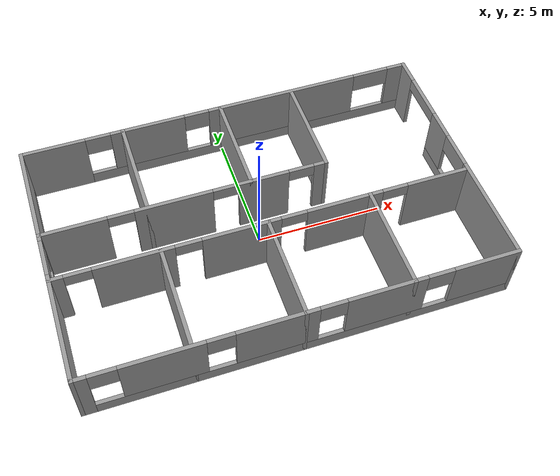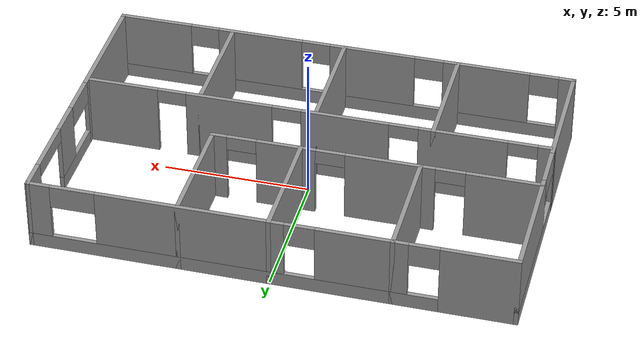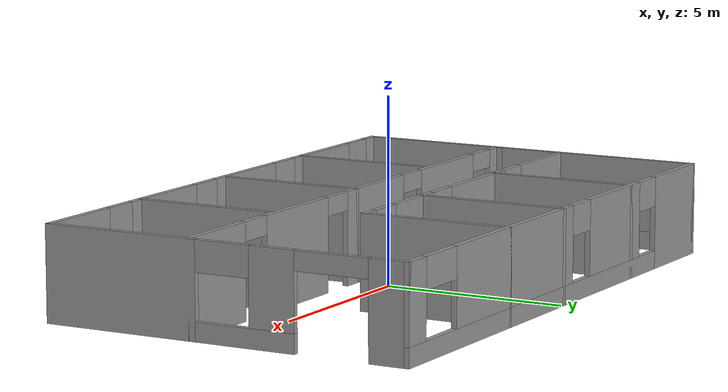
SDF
<?xml version='1.0'?>
<sdf version='1.6'>
  <model name='Hosp_Map'>
    <pose>0 0 0 0 -0 0</pose>
    <link name='Wall_0'>
      <pose>0 -5 0 0 -0 0</pose>
      <visual name='Wall_0_Visual_0'>
        <pose>-7.7875 0 1.25 0 -0 0</pose>
        <geometry>
          <box>
            <size>0.575 0.15 2.5</size>
          </box>
        </geometry>
        <material>
          <script>
            <uri>file://media/materials/scripts/gazebo.material</uri>
            <name>Gazebo/Grey</name>
          </script>
          <ambient>1 1 1 1</ambient>
        </material>
        <meta>
          <layer>0</layer>
        </meta>
      </visual>
      <collision name='Wall_0_Collision_0'>
        <geometry>
          <box>
            <size>0.575 0.15 2.5</size>
          </box>
        </geometry>
        <pose>-7.7875 0 1.25 0 -0 0</pose>
      </collision>
      <visual name='Wall_0_Visual_1'>
        <pose>0.2875 0 0.25 0 -0 0</pose>
        <geometry>
          <box>
            <size>15.575 0.15 0.5</size>
          </box>
        </geometry>
        <material>
          <script>
            <uri>file://media/materials/scripts/gazebo.material</uri>
            <name>Gazebo/Grey</name>
          </script>
          <ambient>1 1 1 1</ambient>
        </material>
        <meta>
          <layer>0</layer>
        </meta>
      </visual>
      <collision name='Wall_0_Collision_1'>
        <geometry>
          <box>
            <size>15.575 0.15 0.5</size>
          </box>
        </geometry>
        <pose>0.2875 0 0.25 0 -0 0</pose>
      </collision>
      <visual name='Wall_0_Visual_2'>
        <pose>-5 0 1.5 0 -0 0</pose>
        <geometry>
          <box>
            <size>3 0.15 2</size>
          </box>
        </geometry>
        <material>
          <script>
            <uri>file://media/materials/scripts/gazebo.material</uri>
            <name>Gazebo/Grey</name>
          </script>
          <ambient>1 1 1 1</ambient>
        </material>
        <meta>
          <layer>0</layer>
        </meta>
      </visual>
      <collision name='Wall_0_Collision_2'>
        <geometry>
          <box>
            <size>3 0.15 2</size>
          </box>
        </geometry>
        <pose>-5 0 1.5 0 -0 0</pose>
      </collision>
      <visual name='Wall_0_Visual_3'>
        <pose>-1 0 1.5 0 -0 0</pose>
        <geometry>
          <box>
            <size>3 0.15 2</size>
          </box>
        </geometry>
        <material>
          <script>
            <uri>file://media/materials/scripts/gazebo.material</uri>
            <name>Gazebo/Grey</name>
          </script>
          <ambient>1 1 1 1</ambient>
        </material>
        <meta>
          <layer>0</layer>
        </meta>
      </visual>
      <collision name='Wall_0_Collision_3'>
        <geometry>
          <box>
            <size>3 0.15 2</size>
          </box>
        </geometry>
        <pose>-1 0 1.5 0 -0 0</pose>
      </collision>
      <visual name='Wall_0_Visual_4'>
        <pose>3 0 1.5 0 -0 0</pose>
        <geometry>
          <box>
            <size>3 0.15 2</size>
          </box>
        </geometry>
        <material>
          <script>
            <uri>file://media/materials/scripts/gazebo.material</uri>
            <name>Gazebo/Grey</name>
          </script>
          <ambient>1 1 1 1</ambient>
        </material>
        <meta>
          <layer>0</layer>
        </meta>
      </visual>
      <collision name='Wall_0_Collision_4'>
        <geometry>
          <box>
            <size>3 0.15 2</size>
          </box>
        </geometry>
        <pose>3 0 1.5 0 -0 0</pose>
      </collision>
      <visual name='Wall_0_Visual_5'>
        <pose>6.7875 0 1.5 0 -0 0</pose>
        <geometry>
          <box>
            <size>2.575 0.15 2</size>
          </box>
        </geometry>
        <material>
          <script>
            <uri>file://media/materials/scripts/gazebo.material</uri>
            <name>Gazebo/Grey</name>
          </script>
          <ambient>1 1 1 1</ambient>
        </material>
        <meta>
          <layer>0</layer>
        </meta>
      </visual>
      <collision name='Wall_0_Collision_5'>
        <geometry>
          <box>
            <size>2.575 0.15 2</size>
          </box>
        </geometry>
        <pose>6.7875 0 1.5 0 -0 0</pose>
      </collision>
      <visual name='Wall_0_Visual_6'>
        <pose>-7 0 2.1 0 -0 0</pose>
        <geometry>
          <box>
            <size>1 0.15 0.8</size>
          </box>
        </geometry>
        <material>
          <script>
            <uri>file://media/materials/scripts/gazebo.material</uri>
            <name>Gazebo/Grey</name>
          </script>
          <ambient>1 1 1 1</ambient>
        </material>
        <meta>
          <layer>0</layer>
        </meta>
      </visual>
      <collision name='Wall_0_Collision_6'>
        <geometry>
          <box>
            <size>1 0.15 0.8</size>
          </box>
        </geometry>
        <pose>-7 0 2.1 0 -0 0</pose>
      </collision>
      <visual name='Wall_0_Visual_7'>
        <pose>-3 0 2.1 0 -0 0</pose>
        <geometry>
          <box>
            <size>1 0.15 0.8</size>
          </box>
        </geometry>
        <material>
          <script>
            <uri>file://media/materials/scripts/gazebo.material</uri>
            <name>Gazebo/Grey</name>
          </script>
          <ambient>1 1 1 1</ambient>
        </material>
        <meta>
          <layer>0</layer>
        </meta>
      </visual>
      <collision name='Wall_0_Collision_7'>
        <geometry>
          <box>
            <size>1 0.15 0.8</size>
          </box>
        </geometry>
        <pose>-3 0 2.1 0 -0 0</pose>
      </collision>
      <visual name='Wall_0_Visual_8'>
        <pose>1 0 2.1 0 -0 0</pose>
        <geometry>
          <box>
            <size>1 0.15 0.8</size>
          </box>
        </geometry>
        <material>
          <script>
            <uri>file://media/materials/scripts/gazebo.material</uri>
            <name>Gazebo/Grey</name>
          </script>
          <ambient>1 1 1 1</ambient>
        </material>
        <meta>
          <layer>0</layer>
        </meta>
      </visual>
      <collision name='Wall_0_Collision_8'>
        <geometry>
          <box>
            <size>1 0.15 0.8</size>
          </box>
        </geometry>
        <pose>1 0 2.1 0 -0 0</pose>
      </collision>
      <visual name='Wall_0_Visual_9'>
        <pose>5 0 2.1 0 -0 0</pose>
        <geometry>
          <box>
            <size>1 0.15 0.8</size>
          </box>
        </geometry>
        <material>
          <script>
            <uri>file://media/materials/scripts/gazebo.material</uri>
            <name>Gazebo/Grey</name>
          </script>
          <ambient>1 1 1 1</ambient>
        </material>
        <meta>
          <layer>0</layer>
        </meta>
      </visual>
      <collision name='Wall_0_Collision_9'>
        <geometry>
          <box>
            <size>1 0.15 0.8</size>
          </box>
        </geometry>
        <pose>5 0 2.1 0 -0 0</pose>
      </collision>
    </link>
    <link name='Wall_10'>
      <collision name='Wall_10_Collision'>
        <geometry>
          <box>
            <size>4.15 0.15 2.5</size>
          </box>
        </geometry>
        <pose>0 0 1.25 0 -0 0</pose>
      </collision>
      <visual name='Wall_10_Visual'>
        <pose>0 0 1.25 0 -0 0</pose>
        <geometry>
          <box>
            <size>4.15 0.15 2.5</size>
          </box>
        </geometry>
        <material>
          <script>
            <uri>file://media/materials/scripts/gazebo.material</uri>
            <name>Gazebo/Grey</name>
          </script>
          <ambient>1 1 1 1</ambient>
        </material>
        <meta>
          <layer>0</layer>
        </meta>
      </visual>
      <pose>-4 -3 0 0 -0 -1.5708</pose>
    </link>
    <link name='Wall_12'>
      <collision name='Wall_12_Collision'>
        <geometry>
          <box>
            <size>4.15 0.15 2.5</size>
          </box>
        </geometry>
        <pose>0 0 1.25 0 -0 0</pose>
      </collision>
      <visual name='Wall_12_Visual'>
        <pose>0 0 1.25 0 -0 0</pose>
        <geometry>
          <box>
            <size>4.15 0.15 2.5</size>
          </box>
        </geometry>
        <material>
          <script>
            <uri>file://media/materials/scripts/gazebo.material</uri>
            <name>Gazebo/Grey</name>
          </script>
          <ambient>1 1 1 1</ambient>
        </material>
        <meta>
          <layer>0</layer>
        </meta>
      </visual>
      <pose>0 -3 0 0 -0 -1.5708</pose>
    </link>
    <link name='Wall_14'>
      <collision name='Wall_14_Collision'>
        <geometry>
          <box>
            <size>4.15 0.15 2.5</size>
          </box>
        </geometry>
        <pose>0 0 1.25 0 -0 0</pose>
      </collision>
      <visual name='Wall_14_Visual'>
        <pose>0 0 1.25 0 -0 0</pose>
        <geometry>
          <box>
            <size>4.15 0.15 2.5</size>
          </box>
        </geometry>
        <material>
          <script>
            <uri>file://media/materials/scripts/gazebo.material</uri>
            <name>Gazebo/Grey</name>
          </script>
          <ambient>1 1 1 1</ambient>
        </material>
        <meta>
          <layer>0</layer>
        </meta>
      </visual>
      <pose>4 -3 0 0 -0 -1.5708</pose>
    </link>
    <link name='Wall_16'>
      <pose>-2.5 1 0 0 -0 0</pose>
      <visual name='Wall_16_Visual_0'>
        <pose>-4.2875 0 1.25 0 -0 0</pose>
        <geometry>
          <box>
            <size>2.575 0.15 2.5</size>
          </box>
        </geometry>
        <material>
          <script>
            <uri>file://media/materials/scripts/gazebo.material</uri>
            <name>Gazebo/Grey</name>
          </script>
          <ambient>1 1 1 1</ambient>
        </material>
        <meta>
          <layer>0</layer>
        </meta>
      </visual>
      <collision name='Wall_16_Collision_0'>
        <geometry>
          <box>
            <size>2.575 0.15 2.5</size>
          </box>
        </geometry>
        <pose>-4.2875 0 1.25 0 -0 0</pose>
      </collision>
      <visual name='Wall_16_Visual_1'>
        <pose>-0.5 0 1.25 0 -0 0</pose>
        <geometry>
          <box>
            <size>3 0.15 2.5</size>
          </box>
        </geometry>
        <material>
          <script>
            <uri>file://media/materials/scripts/gazebo.material</uri>
            <name>Gazebo/Grey</name>
          </script>
          <ambient>1 1 1 1</ambient>
        </material>
        <meta>
          <layer>0</layer>
        </meta>
      </visual>
      <collision name='Wall_16_Collision_1'>
        <geometry>
          <box>
            <size>3 0.15 2.5</size>
          </box>
        </geometry>
        <pose>-0.5 0 1.25 0 -0 0</pose>
      </collision>
      <visual name='Wall_16_Visual_2'>
        <pose>3 0 1.25 0 -0 0</pose>
        <geometry>
          <box>
            <size>2 0.15 2.5</size>
          </box>
        </geometry>
        <material>
          <script>
            <uri>file://media/materials/scripts/gazebo.material</uri>
            <name>Gazebo/Grey</name>
          </script>
          <ambient>1 1 1 1</ambient>
        </material>
        <meta>
          <layer>0</layer>
        </meta>
      </visual>
      <collision name='Wall_16_Collision_2'>
        <geometry>
          <box>
            <size>2 0.15 2.5</size>
          </box>
        </geometry>
        <pose>3 0 1.25 0 -0 0</pose>
      </collision>
      <visual name='Wall_16_Visual_3'>
        <pose>5.2875 0 1.25 0 -0 0</pose>
        <geometry>
          <box>
            <size>0.575 0.15 2.5</size>
          </box>
        </geometry>
        <material>
          <script>
            <uri>file://media/materials/scripts/gazebo.material</uri>
            <name>Gazebo/Grey</name>
          </script>
          <ambient>1 1 1 1</ambient>
        </material>
        <meta>
          <layer>0</layer>
        </meta>
      </visual>
      <collision name='Wall_16_Collision_3'>
        <geometry>
          <box>
            <size>0.575 0.15 2.5</size>
          </box>
        </geometry>
        <pose>5.2875 0 1.25 0 -0 0</pose>
      </collision>
      <visual name='Wall_16_Visual_4'>
        <pose>-2.5 0 2.25 0 -0 0</pose>
        <geometry>
          <box>
            <size>1 0.15 0.5</size>
          </box>
        </geometry>
        <material>
          <script>
            <uri>file://media/materials/scripts/gazebo.material</uri>
            <name>Gazebo/Grey</name>
          </script>
          <ambient>1 1 1 1</ambient>
        </material>
        <meta>
          <layer>0</layer>
        </meta>
      </visual>
      <collision name='Wall_16_Collision_4'>
        <geometry>
          <box>
            <size>1 0.15 0.5</size>
          </box>
        </geometry>
        <pose>-2.5 0 2.25 0 -0 0</pose>
      </collision>
      <visual name='Wall_16_Visual_5'>
        <pose>1.5 0 2.25 0 -0 0</pose>
        <geometry>
          <box>
            <size>1 0.15 0.5</size>
          </box>
        </geometry>
        <material>
          <script>
            <uri>file://media/materials/scripts/gazebo.material</uri>
            <name>Gazebo/Grey</name>
          </script>
          <ambient>1 1 1 1</ambient>
        </material>
        <meta>
          <layer>0</layer>
        </meta>
      </visual>
      <collision name='Wall_16_Collision_5'>
        <geometry>
          <box>
            <size>1 0.15 0.5</size>
          </box>
        </geometry>
        <pose>1.5 0 2.25 0 -0 0</pose>
      </collision>
      <visual name='Wall_16_Visual_6'>
        <pose>4.5 0 2.25 0 -0 0</pose>
        <geometry>
          <box>
            <size>1 0.15 0.5</size>
          </box>
        </geometry>
        <material>
          <script>
            <uri>file://media/materials/scripts/gazebo.material</uri>
            <name>Gazebo/Grey</name>
          </script>
          <ambient>1 1 1 1</ambient>
        </material>
        <meta>
          <layer>0</layer>
        </meta>
      </visual>
      <collision name='Wall_16_Collision_6'>
        <geometry>
          <box>
            <size>1 0.15 0.5</size>
          </box>
        </geometry>
        <pose>4.5 0 2.25 0 -0 0</pose>
      </collision>
    </link>
    <link name='Wall_18'>
      <collision name='Wall_18_Collision'>
        <geometry>
          <box>
            <size>4.15 0.15 2.5</size>
          </box>
        </geometry>
        <pose>0 0 1.25 0 -0 0</pose>
      </collision>
      <visual name='Wall_18_Visual'>
        <pose>0 0 1.25 0 -0 0</pose>
        <geometry>
          <box>
            <size>4.15 0.15 2.5</size>
          </box>
        </geometry>
        <material>
          <script>
            <uri>file://media/materials/scripts/gazebo.material</uri>
            <name>Gazebo/Grey</name>
          </script>
          <ambient>1 1 1 1</ambient>
        </material>
        <meta>
          <layer>0</layer>
        </meta>
      </visual>
      <pose>3 3 0 0 -0 1.5708</pose>
    </link>
    <link name='Wall_2'>
      <pose>-8 0 0 0 -0 1.5708</pose>
      <visual name='Wall_2_Visual_0'>
        <pose>-2.9125 0 1.25 0 -0 0</pose>
        <geometry>
          <box>
            <size>4.325 0.15 2.5</size>
          </box>
        </geometry>
        <material>
          <script>
            <uri>file://media/materials/scripts/gazebo.material</uri>
            <name>Gazebo/Grey</name>
          </script>
          <ambient>1 1 1 1</ambient>
        </material>
        <meta>
          <layer>0</layer>
        </meta>
      </visual>
      <collision name='Wall_2_Collision_0'>
        <geometry>
          <box>
            <size>4.325 0.15 2.5</size>
          </box>
        </geometry>
        <pose>-2.9125 0 1.25 0 -0 0</pose>
      </collision>
      <visual name='Wall_2_Visual_1'>
        <pose>2.1625 0 0.25 0 -0 0</pose>
        <geometry>
          <box>
            <size>5.825 0.15 0.5</size>
          </box>
        </geometry>
        <material>
          <script>
            <uri>file://media/materials/scripts/gazebo.material</uri>
            <name>Gazebo/Grey</name>
          </script>
          <ambient>1 1 1 1</ambient>
        </material>
        <meta>
          <layer>0</layer>
        </meta>
      </visual>
      <collision name='Wall_2_Collision_1'>
        <geometry>
          <box>
            <size>5.825 0.15 0.5</size>
          </box>
        </geometry>
        <pose>2.1625 0 0.25 0 -0 0</pose>
      </collision>
      <visual name='Wall_2_Visual_2'>
        <pose>2.9125 0 1.5 0 -0 0</pose>
        <geometry>
          <box>
            <size>4.325 0.15 2</size>
          </box>
        </geometry>
        <material>
          <script>
            <uri>file://media/materials/scripts/gazebo.material</uri>
            <name>Gazebo/Grey</name>
          </script>
          <ambient>1 1 1 1</ambient>
        </material>
        <meta>
          <layer>0</layer>
        </meta>
      </visual>
      <collision name='Wall_2_Collision_2'>
        <geometry>
          <box>
            <size>4.325 0.15 2</size>
          </box>
        </geometry>
        <pose>2.9125 0 1.5 0 -0 0</pose>
      </collision>
      <visual name='Wall_2_Visual_3'>
        <pose>0 0 2.1 0 -0 0</pose>
        <geometry>
          <box>
            <size>1.5 0.15 0.8</size>
          </box>
        </geometry>
        <material>
          <script>
            <uri>file://media/materials/scripts/gazebo.material</uri>
            <name>Gazebo/Grey</name>
          </script>
          <ambient>1 1 1 1</ambient>
        </material>
        <meta>
          <layer>0</layer>
        </meta>
      </visual>
      <collision name='Wall_2_Collision_3'>
        <geometry>
          <box>
            <size>1.5 0.15 0.8</size>
          </box>
        </geometry>
        <pose>0 0 2.1 0 -0 0</pose>
      </collision>
    </link>
    <link name='Wall_20'>
      <collision name='Wall_20_Collision'>
        <geometry>
          <box>
            <size>4.15 0.15 2.5</size>
          </box>
        </geometry>
        <pose>0 0 1.25 0 -0 0</pose>
      </collision>
      <visual name='Wall_20_Visual'>
        <pose>0 0 1.25 0 -0 0</pose>
        <geometry>
          <box>
            <size>4.15 0.15 2.5</size>
          </box>
        </geometry>
        <material>
          <script>
            <uri>file://media/materials/scripts/gazebo.material</uri>
            <name>Gazebo/Grey</name>
          </script>
          <ambient>1 1 1 1</ambient>
        </material>
        <meta>
          <layer>0</layer>
        </meta>
      </visual>
      <pose>0 3 0 0 -0 1.5708</pose>
    </link>
    <link name='Wall_22'>
      <collision name='Wall_22_Collision'>
        <geometry>
          <box>
            <size>4.15 0.15 2.5</size>
          </box>
        </geometry>
        <pose>0 0 1.25 0 -0 0</pose>
      </collision>
      <visual name='Wall_22_Visual'>
        <pose>0 0 1.25 0 -0 0</pose>
        <geometry>
          <box>
            <size>4.15 0.15 2.5</size>
          </box>
        </geometry>
        <material>
          <script>
            <uri>file://media/materials/scripts/gazebo.material</uri>
            <name>Gazebo/Grey</name>
          </script>
          <ambient>1 1 1 1</ambient>
        </material>
        <meta>
          <layer>0</layer>
        </meta>
      </visual>
      <pose>-4 3 0 0 -0 1.5708</pose>
    </link>
    <link name='Wall_4'>
      <pose>8 0 0 0 -0 1.5708</pose>
      <visual name='Wall_4_Visual_0'>
        <pose>-2.9125 0 1.25 0 -0 0</pose>
        <geometry>
          <box>
            <size>4.325 0.15 2.5</size>
          </box>
        </geometry>
        <material>
          <script>
            <uri>file://media/materials/scripts/gazebo.material</uri>
            <name>Gazebo/Grey</name>
          </script>
          <ambient>1 1 1 1</ambient>
        </material>
        <meta>
          <layer>0</layer>
        </meta>
      </visual>
      <collision name='Wall_4_Collision_0'>
        <geometry>
          <box>
            <size>4.325 0.15 2.5</size>
          </box>
        </geometry>
        <pose>-2.9125 0 1.25 0 -0 0</pose>
      </collision>
      <visual name='Wall_4_Visual_1'>
        <pose>4.5375 0 1.25 0 -0 0</pose>
        <geometry>
          <box>
            <size>1.075 0.15 2.5</size>
          </box>
        </geometry>
        <material>
          <script>
            <uri>file://media/materials/scripts/gazebo.material</uri>
            <name>Gazebo/Grey</name>
          </script>
          <ambient>1 1 1 1</ambient>
        </material>
        <meta>
          <layer>0</layer>
        </meta>
      </visual>
      <collision name='Wall_4_Collision_1'>
        <geometry>
          <box>
            <size>1.075 0.15 2.5</size>
          </box>
        </geometry>
        <pose>4.5375 0 1.25 0 -0 0</pose>
      </collision>
      <visual name='Wall_4_Visual_2'>
        <pose>0.625 0 0.25 0 -0 0</pose>
        <geometry>
          <box>
            <size>2.75 0.15 0.5</size>
          </box>
        </geometry>
        <material>
          <script>
            <uri>file://media/materials/scripts/gazebo.material</uri>
            <name>Gazebo/Grey</name>
          </script>
          <ambient>1 1 1 1</ambient>
        </material>
        <meta>
          <layer>0</layer>
        </meta>
      </visual>
      <collision name='Wall_4_Collision_2'>
        <geometry>
          <box>
            <size>2.75 0.15 0.5</size>
          </box>
        </geometry>
        <pose>0.625 0 0.25 0 -0 0</pose>
      </collision>
      <visual name='Wall_4_Visual_3'>
        <pose>1.375 0 1.5 0 -0 0</pose>
        <geometry>
          <box>
            <size>1.25 0.15 2</size>
          </box>
        </geometry>
        <material>
          <script>
            <uri>file://media/materials/scripts/gazebo.material</uri>
            <name>Gazebo/Grey</name>
          </script>
          <ambient>1 1 1 1</ambient>
        </material>
        <meta>
          <layer>0</layer>
        </meta>
      </visual>
      <collision name='Wall_4_Collision_3'>
        <geometry>
          <box>
            <size>1.25 0.15 2</size>
          </box>
        </geometry>
        <pose>1.375 0 1.5 0 -0 0</pose>
      </collision>
      <visual name='Wall_4_Visual_4'>
        <pose>0 0 2.1 0 -0 0</pose>
        <geometry>
          <box>
            <size>1.5 0.15 0.8</size>
          </box>
        </geometry>
        <material>
          <script>
            <uri>file://media/materials/scripts/gazebo.material</uri>
            <name>Gazebo/Grey</name>
          </script>
          <ambient>1 1 1 1</ambient>
        </material>
        <meta>
          <layer>0</layer>
        </meta>
      </visual>
      <collision name='Wall_4_Collision_4'>
        <geometry>
          <box>
            <size>1.5 0.15 0.8</size>
          </box>
        </geometry>
        <pose>0 0 2.1 0 -0 0</pose>
      </collision>
      <visual name='Wall_4_Visual_5'>
        <pose>3 0 2.25 0 -0 0</pose>
        <geometry>
          <box>
            <size>2 0.15 0.5</size>
          </box>
        </geometry>
        <material>
          <script>
            <uri>file://media/materials/scripts/gazebo.material</uri>
            <name>Gazebo/Grey</name>
          </script>
          <ambient>1 1 1 1</ambient>
        </material>
        <meta>
          <layer>0</layer>
        </meta>
      </visual>
      <collision name='Wall_4_Collision_5'>
        <geometry>
          <box>
            <size>2 0.15 0.5</size>
          </box>
        </geometry>
        <pose>3 0 2.25 0 -0 0</pose>
      </collision>
    </link>
    <link name='Wall_6'>
      <pose>0 5 0 0 -0 0</pose>
      <visual name='Wall_6_Visual_0'>
        <pose>-6.79071 0 1.25 0 -0 0</pose>
        <geometry>
          <box>
            <size>2.56858 0.15 2.5</size>
          </box>
        </geometry>
        <material>
          <script>
            <uri>file://media/materials/scripts/gazebo.material</uri>
            <name>Gazebo/Grey</name>
          </script>
          <ambient>1 1 1 1</ambient>
        </material>
        <meta>
          <layer>0</layer>
        </meta>
      </visual>
      <collision name='Wall_6_Collision_0'>
        <geometry>
          <box>
            <size>2.56858 0.15 2.5</size>
          </box>
        </geometry>
        <pose>-6.79071 0 1.25 0 -0 0</pose>
      </collision>
      <visual name='Wall_6_Visual_1'>
        <pose>1.28429 0 0.25 0 -0 0</pose>
        <geometry>
          <box>
            <size>13.5814 0.15 0.5</size>
          </box>
        </geometry>
        <material>
          <script>
            <uri>file://media/materials/scripts/gazebo.material</uri>
            <name>Gazebo/Grey</name>
          </script>
          <ambient>1 1 1 1</ambient>
        </material>
        <meta>
          <layer>0</layer>
        </meta>
      </visual>
      <collision name='Wall_6_Collision_1'>
        <geometry>
          <box>
            <size>13.5814 0.15 0.5</size>
          </box>
        </geometry>
        <pose>1.28429 0 0.25 0 -0 0</pose>
      </collision>
      <visual name='Wall_6_Visual_2'>
        <pose>-3.00321 0 1.5 0 -0 0</pose>
        <geometry>
          <box>
            <size>3.00642 0.15 2</size>
          </box>
        </geometry>
        <material>
          <script>
            <uri>file://media/materials/scripts/gazebo.material</uri>
            <name>Gazebo/Grey</name>
          </script>
          <ambient>1 1 1 1</ambient>
        </material>
        <meta>
          <layer>0</layer>
        </meta>
      </visual>
      <collision name='Wall_6_Collision_2'>
        <geometry>
          <box>
            <size>3.00642 0.15 2</size>
          </box>
        </geometry>
        <pose>-3.00321 0 1.5 0 -0 0</pose>
      </collision>
      <visual name='Wall_6_Visual_3'>
        <pose>2.625 0 1.5 0 -0 0</pose>
        <geometry>
          <box>
            <size>6.25 0.15 2</size>
          </box>
        </geometry>
        <material>
          <script>
            <uri>file://media/materials/scripts/gazebo.material</uri>
            <name>Gazebo/Grey</name>
          </script>
          <ambient>1 1 1 1</ambient>
        </material>
        <meta>
          <layer>0</layer>
        </meta>
      </visual>
      <collision name='Wall_6_Collision_3'>
        <geometry>
          <box>
            <size>6.25 0.15 2</size>
          </box>
        </geometry>
        <pose>2.625 0 1.5 0 -0 0</pose>
      </collision>
      <visual name='Wall_6_Visual_4'>
        <pose>7.6625 0 1.5 0 -0 0</pose>
        <geometry>
          <box>
            <size>0.825 0.15 2</size>
          </box>
        </geometry>
        <material>
          <script>
            <uri>file://media/materials/scripts/gazebo.material</uri>
            <name>Gazebo/Grey</name>
          </script>
          <ambient>1 1 1 1</ambient>
        </material>
        <meta>
          <layer>0</layer>
        </meta>
      </visual>
      <collision name='Wall_6_Collision_4'>
        <geometry>
          <box>
            <size>0.825 0.15 2</size>
          </box>
        </geometry>
        <pose>7.6625 0 1.5 0 -0 0</pose>
      </collision>
      <visual name='Wall_6_Visual_5'>
        <pose>-5.00642 0 2.1 0 -0 0</pose>
        <geometry>
          <box>
            <size>1 0.15 0.8</size>
          </box>
        </geometry>
        <material>
          <script>
            <uri>file://media/materials/scripts/gazebo.material</uri>
            <name>Gazebo/Grey</name>
          </script>
          <ambient>1 1 1 1</ambient>
        </material>
        <meta>
          <layer>0</layer>
        </meta>
      </visual>
      <collision name='Wall_6_Collision_5'>
        <geometry>
          <box>
            <size>1 0.15 0.8</size>
          </box>
        </geometry>
        <pose>-5.00642 0 2.1 0 -0 0</pose>
      </collision>
      <visual name='Wall_6_Visual_6'>
        <pose>-1 0 2.1 0 -0 0</pose>
        <geometry>
          <box>
            <size>1 0.15 0.8</size>
          </box>
        </geometry>
        <material>
          <script>
            <uri>file://media/materials/scripts/gazebo.material</uri>
            <name>Gazebo/Grey</name>
          </script>
          <ambient>1 1 1 1</ambient>
        </material>
        <meta>
          <layer>0</layer>
        </meta>
      </visual>
      <collision name='Wall_6_Collision_6'>
        <geometry>
          <box>
            <size>1 0.15 0.8</size>
          </box>
        </geometry>
        <pose>-1 0 2.1 0 -0 0</pose>
      </collision>
      <visual name='Wall_6_Visual_7'>
        <pose>6.5 0 2.1 0 -0 0</pose>
        <geometry>
          <box>
            <size>1.5 0.15 0.8</size>
          </box>
        </geometry>
        <material>
          <script>
            <uri>file://media/materials/scripts/gazebo.material</uri>
            <name>Gazebo/Grey</name>
          </script>
          <ambient>1 1 1 1</ambient>
        </material>
        <meta>
          <layer>0</layer>
        </meta>
      </visual>
      <collision name='Wall_6_Collision_7'>
        <geometry>
          <box>
            <size>1.5 0.15 0.8</size>
          </box>
        </geometry>
        <pose>6.5 0 2.1 0 -0 0</pose>
      </collision>
    </link>
    <link name='Wall_8'>
      <pose>0 -1 0 0 -0 0</pose>
      <visual name='Wall_8_Visual_0'>
        <pose>-7.7875 0 1.25 0 -0 0</pose>
        <geometry>
          <box>
            <size>0.575 0.15 2.5</size>
          </box>
        </geometry>
        <material>
          <script>
            <uri>file://media/materials/scripts/gazebo.material</uri>
            <name>Gazebo/Grey</name>
          </script>
          <ambient>1 1 1 1</ambient>
        </material>
        <meta>
          <layer>0</layer>
        </meta>
      </visual>
      <collision name='Wall_8_Collision_0'>
        <geometry>
          <box>
            <size>0.575 0.15 2.5</size>
          </box>
        </geometry>
        <pose>-7.7875 0 1.25 0 -0 0</pose>
      </collision>
      <visual name='Wall_8_Visual_1'>
        <pose>-5 0 1.25 0 -0 0</pose>
        <geometry>
          <box>
            <size>3 0.15 2.5</size>
          </box>
        </geometry>
        <material>
          <script>
            <uri>file://media/materials/scripts/gazebo.material</uri>
            <name>Gazebo/Grey</name>
          </script>
          <ambient>1 1 1 1</ambient>
        </material>
        <meta>
          <layer>0</layer>
        </meta>
      </visual>
      <collision name='Wall_8_Collision_1'>
        <geometry>
          <box>
            <size>3 0.15 2.5</size>
          </box>
        </geometry>
        <pose>-5 0 1.25 0 -0 0</pose>
      </collision>
      <visual name='Wall_8_Visual_2'>
        <pose>-1 0 1.25 0 -0 0</pose>
        <geometry>
          <box>
            <size>3 0.15 2.5</size>
          </box>
        </geometry>
        <material>
          <script>
            <uri>file://media/materials/scripts/gazebo.material</uri>
            <name>Gazebo/Grey</name>
          </script>
          <ambient>1 1 1 1</ambient>
        </material>
        <meta>
          <layer>0</layer>
        </meta>
      </visual>
      <collision name='Wall_8_Collision_2'>
        <geometry>
          <box>
            <size>3 0.15 2.5</size>
          </box>
        </geometry>
        <pose>-1 0 1.25 0 -0 0</pose>
      </collision>
      <visual name='Wall_8_Visual_3'>
        <pose>3 0 1.25 0 -0 0</pose>
        <geometry>
          <box>
            <size>3 0.15 2.5</size>
          </box>
        </geometry>
        <material>
          <script>
            <uri>file://media/materials/scripts/gazebo.material</uri>
            <name>Gazebo/Grey</name>
          </script>
          <ambient>1 1 1 1</ambient>
        </material>
        <meta>
          <layer>0</layer>
        </meta>
      </visual>
      <collision name='Wall_8_Collision_3'>
        <geometry>
          <box>
            <size>3 0.15 2.5</size>
          </box>
        </geometry>
        <pose>3 0 1.25 0 -0 0</pose>
      </collision>
      <visual name='Wall_8_Visual_4'>
        <pose>6.7875 0 1.25 0 -0 0</pose>
        <geometry>
          <box>
            <size>2.575 0.15 2.5</size>
          </box>
        </geometry>
        <material>
          <script>
            <uri>file://media/materials/scripts/gazebo.material</uri>
            <name>Gazebo/Grey</name>
          </script>
          <ambient>1 1 1 1</ambient>
        </material>
        <meta>
          <layer>0</layer>
        </meta>
      </visual>
      <collision name='Wall_8_Collision_4'>
        <geometry>
          <box>
            <size>2.575 0.15 2.5</size>
          </box>
        </geometry>
        <pose>6.7875 0 1.25 0 -0 0</pose>
      </collision>
      <visual name='Wall_8_Visual_5'>
        <pose>-7 0 2.25 0 -0 0</pose>
        <geometry>
          <box>
            <size>1 0.15 0.5</size>
          </box>
        </geometry>
        <material>
          <script>
            <uri>file://media/materials/scripts/gazebo.material</uri>
            <name>Gazebo/Grey</name>
          </script>
          <ambient>1 1 1 1</ambient>
        </material>
        <meta>
          <layer>0</layer>
        </meta>
      </visual>
      <collision name='Wall_8_Collision_5'>
        <geometry>
          <box>
            <size>1 0.15 0.5</size>
          </box>
        </geometry>
        <pose>-7 0 2.25 0 -0 0</pose>
      </collision>
      <visual name='Wall_8_Visual_6'>
        <pose>-3 0 2.25 0 -0 0</pose>
        <geometry>
          <box>
            <size>1 0.15 0.5</size>
          </box>
        </geometry>
        <material>
          <script>
            <uri>file://media/materials/scripts/gazebo.material</uri>
            <name>Gazebo/Grey</name>
          </script>
          <ambient>1 1 1 1</ambient>
        </material>
        <meta>
          <layer>0</layer>
        </meta>
      </visual>
      <collision name='Wall_8_Collision_6'>
        <geometry>
          <box>
            <size>1 0.15 0.5</size>
          </box>
        </geometry>
        <pose>-3 0 2.25 0 -0 0</pose>
      </collision>
      <visual name='Wall_8_Visual_7'>
        <pose>1 0 2.25 0 -0 0</pose>
        <geometry>
          <box>
            <size>1 0.15 0.5</size>
          </box>
        </geometry>
        <material>
          <script>
            <uri>file://media/materials/scripts/gazebo.material</uri>
            <name>Gazebo/Grey</name>
          </script>
          <ambient>1 1 1 1</ambient>
        </material>
        <meta>
          <layer>0</layer>
        </meta>
      </visual>
      <collision name='Wall_8_Collision_7'>
        <geometry>
          <box>
            <size>1 0.15 0.5</size>
          </box>
        </geometry>
        <pose>1 0 2.25 0 -0 0</pose>
      </collision>
      <visual name='Wall_8_Visual_8'>
        <pose>5 0 2.25 0 -0 0</pose>
        <geometry>
          <box>
            <size>1 0.15 0.5</size>
          </box>
        </geometry>
        <material>
          <script>
            <uri>file://media/materials/scripts/gazebo.material</uri>
            <name>Gazebo/Grey</name>
          </script>
          <ambient>1 1 1 1</ambient>
        </material>
        <meta>
          <layer>0</layer>
        </meta>
      </visual>
      <collision name='Wall_8_Collision_8'>
        <geometry>
          <box>
            <size>1 0.15 0.5</size>
          </box>
        </geometry>
        <pose>5 0 2.25 0 -0 0</pose>
      </collision>
    </link>
    <static>1</static>
  </model>
</sdf>
